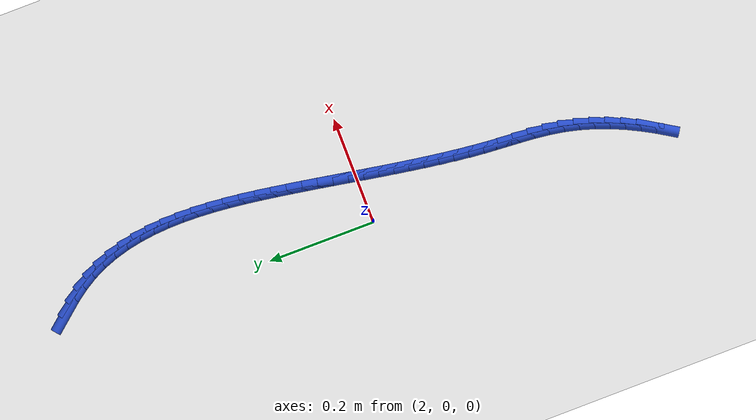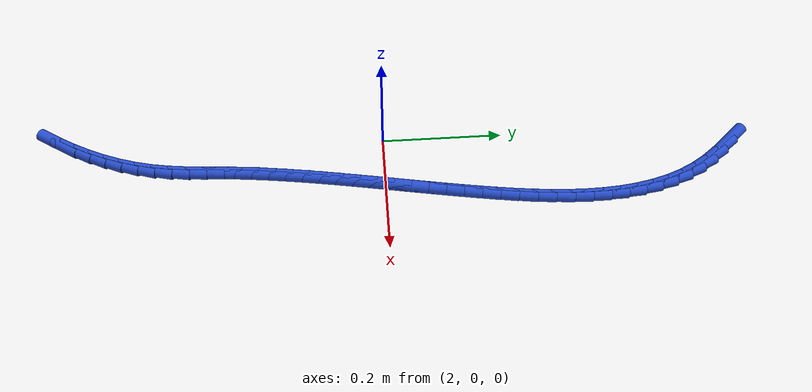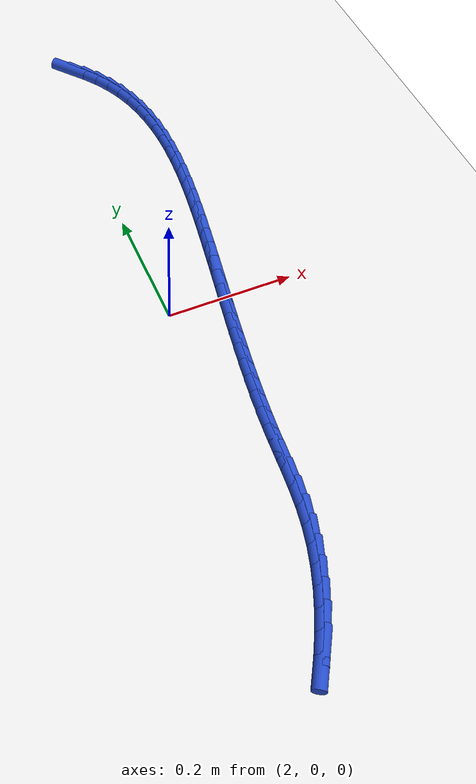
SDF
<sdf version="1.6">
 <world name="default">
  <model name="ground_plane">
   <static>1</static>
   <link name="link">
    <collision name="collision">
     <geometry><plane><normal>0 0 1</normal><size>100 100</size></plane></geometry>
     <surface><friction><ode><mu>100</mu><mu2>50</mu2></ode></friction></surface>
    </collision>
    <visual name="visual">
     <cast_shadows>0</cast_shadows>
     <geometry><plane><normal>0 0 1</normal><size>100 100</size></plane></geometry>
     <material>
      <script><uri>file://media/materials/scripts/gazebo.material</uri><name>Gazebo/WhiteGlow</name></script>
     </material>
    </visual>
   </link>
  </model>
  <model name="line">
   <link name="link_104">
    <pose>2.043616849463005 0.5763922290481197 0.01 0 1.57 -0.8726222425352713</pose>
    <collision name="collision">
     <geometry><cylinder><radius>0.01</radius><length>0.08</length></cylinder></geometry>
    </collision>
    <visual name="visual">
     <material>
      <script><name>Gazebo/Blue</name><uri>file://media/materials/scripts/gazebo.material</uri></script>
     </material>
     <geometry><cylinder><radius>0.01</radius><length>0.08</length></cylinder></geometry>
    </visual>
   </link>
   <link name="link_105">
    <pose>2.0616501837644305 0.5549027878685728 0.01 0 1.57 -0.939821271320814</pose>
    <collision name="collision">
     <geometry><cylinder><radius>0.01</radius><length>0.08</length></cylinder></geometry>
    </collision>
    <visual name="visual">
     <material>
      <script><name>Gazebo/Blue</name><uri>file://media/materials/scripts/gazebo.material</uri></script>
     </material>
     <geometry><cylinder><radius>0.01</radius><length>0.08</length></cylinder></geometry>
    </visual>
   </link>
   <link name="link_106">
    <pose>2.07796312400773 0.5325749272967468 0.01 0 1.57 -1.0294012689116272</pose>
    <collision name="collision">
     <geometry><cylinder><radius>0.01</radius><length>0.08</length></cylinder></geometry>
    </collision>
    <visual name="visual">
     <material>
      <script><name>Gazebo/Blue</name><uri>file://media/materials/scripts/gazebo.material</uri></script>
     </material>
     <geometry><cylinder><radius>0.01</radius><length>0.08</length></cylinder></geometry>
    </visual>
   </link>
   <link name="link_107">
    <pose>2.092023967388394 0.5091919246186368 0.01 0 1.57 -1.1278972008371482</pose>
    <collision name="collision">
     <geometry><cylinder><radius>0.01</radius><length>0.08</length></cylinder></geometry>
    </collision>
    <visual name="visual">
     <material>
      <script><name>Gazebo/Blue</name><uri>file://media/materials/scripts/gazebo.material</uri></script>
     </material>
     <geometry><cylinder><radius>0.01</radius><length>0.08</length></cylinder></geometry>
    </visual>
   </link>
   <link name="link_108">
    <pose>2.103642874541102 0.4846963636612391 0.01 0 1.57 -1.2199858452626118</pose>
    <collision name="collision">
     <geometry><cylinder><radius>0.01</radius><length>0.08</length></cylinder></geometry>
    </collision>
    <visual name="visual">
     <material>
      <script><name>Gazebo/Blue</name><uri>file://media/materials/scripts/gazebo.material</uri></script>
     </material>
     <geometry><cylinder><radius>0.01</radius><length>0.08</length></cylinder></geometry>
    </visual>
   </link>
   <link name="link_109">
    <pose>2.1129760890835767 0.45919210107750447 0.01 0 1.57 -1.3038880407895914</pose>
    <collision name="collision">
     <geometry><cylinder><radius>0.01</radius><length>0.08</length></cylinder></geometry>
    </collision>
    <visual name="visual">
     <material>
      <script><name>Gazebo/Blue</name><uri>file://media/materials/scripts/gazebo.material</uri></script>
     </material>
     <geometry><cylinder><radius>0.01</radius><length>0.08</length></cylinder></geometry>
    </visual>
   </link>
   <link name="link_110">
    <pose>2.1201952361058534 0.43279016120451924 0.01 0 1.57 -1.3791015390159453</pose>
    <collision name="collision">
     <geometry><cylinder><radius>0.01</radius><length>0.08</length></cylinder></geometry>
    </collision>
    <visual name="visual">
     <material>
      <script><name>Gazebo/Blue</name><uri>file://media/materials/scripts/gazebo.material</uri></script>
     </material>
     <geometry><cylinder><radius>0.01</radius><length>0.08</length></cylinder></geometry>
    </visual>
   </link>
   <link name="link_111">
    <pose>2.125471940697967 0.4056015683793698 0.01 0 1.57 -1.4456336438306607</pose>
    <collision name="collision">
     <geometry><cylinder><radius>0.01</radius><length>0.08</length></cylinder></geometry>
    </collision>
    <visual name="visual">
     <material>
      <script><name>Gazebo/Blue</name><uri>file://media/materials/scripts/gazebo.material</uri></script>
     </material>
     <geometry><cylinder><radius>0.01</radius><length>0.08</length></cylinder></geometry>
    </visual>
   </link>
   <link name="link_112">
    <pose>2.1289778279499516 0.37773734693914174 0.01 0 1.57 -1.503827547458516</pose>
    <collision name="collision">
     <geometry><cylinder><radius>0.01</radius><length>0.08</length></cylinder></geometry>
    </collision>
    <visual name="visual">
     <material>
      <script><name>Gazebo/Blue</name><uri>file://media/materials/scripts/gazebo.material</uri></script>
     </material>
     <geometry><cylinder><radius>0.01</radius><length>0.08</length></cylinder></geometry>
    </visual>
   </link>
   <link name="link_113">
    <pose>2.130884522951842 0.3493085212209216 0.01 0 1.57 -1.5542089308557832</pose>
    <collision name="collision">
     <geometry><cylinder><radius>0.01</radius><length>0.08</length></cylinder></geometry>
    </collision>
    <visual name="visual">
     <material>
      <script><name>Gazebo/Blue</name><uri>file://media/materials/scripts/gazebo.material</uri></script>
     </material>
     <geometry><cylinder><radius>0.01</radius><length>0.08</length></cylinder></geometry>
    </visual>
   </link>
   <link name="link_114">
    <pose>2.1313636507936735 0.32042611556179557 0.01 0 1.57 1.5442220790841703</pose>
    <collision name="collision">
     <geometry><cylinder><radius>0.01</radius><length>0.08</length></cylinder></geometry>
    </collision>
    <visual name="visual">
     <material>
      <script><name>Gazebo/Blue</name><uri>file://media/materials/scripts/gazebo.material</uri></script>
     </material>
     <geometry><cylinder><radius>0.01</radius><length>0.08</length></cylinder></geometry>
    </visual>
   </link>
   <link name="link_115">
    <pose>2.13058683656548 0.2912011542988496 0.01 0 1.57 1.5076978242101087</pose>
    <collision name="collision">
     <geometry><cylinder><radius>0.01</radius><length>0.08</length></cylinder></geometry>
    </collision>
    <visual name="visual">
     <material>
      <script><name>Gazebo/Blue</name><uri>file://media/materials/scripts/gazebo.material</uri></script>
     </material>
     <geometry><cylinder><radius>0.01</radius><length>0.08</length></cylinder></geometry>
    </visual>
   </link>
   <link name="link_116">
    <pose>2.1287257053572963 0.26174466176916983 0.01 0 1.57 1.477286720709618</pose>
    <collision name="collision">
     <geometry><cylinder><radius>0.01</radius><length>0.08</length></cylinder></geometry>
    </collision>
    <visual name="visual">
     <material>
      <script><name>Gazebo/Blue</name><uri>file://media/materials/scripts/gazebo.material</uri></script>
     </material>
     <geometry><cylinder><radius>0.01</radius><length>0.08</length></cylinder></geometry>
    </visual>
   </link>
   <link name="link_117">
    <pose>2.125951882259157 0.23216766230984245 0.01 0 1.57 1.4525500058715943</pose>
    <collision name="collision">
     <geometry><cylinder><radius>0.01</radius><length>0.08</length></cylinder></geometry>
    </collision>
    <visual name="visual">
     <material>
      <script><name>Gazebo/Blue</name><uri>file://media/materials/scripts/gazebo.material</uri></script>
     </material>
     <geometry><cylinder><radius>0.01</radius><length>0.08</length></cylinder></geometry>
    </visual>
   </link>
   <link name="link_118">
    <pose>2.1224369923610973 0.20258118025795374 0.01 0 1.57 1.4331496441090261</pose>
    <collision name="collision">
     <geometry><cylinder><radius>0.01</radius><length>0.08</length></cylinder></geometry>
    </collision>
    <visual name="visual">
     <material>
      <script><name>Gazebo/Blue</name><uri>file://media/materials/scripts/gazebo.material</uri></script>
     </material>
     <geometry><cylinder><radius>0.01</radius><length>0.08</length></cylinder></geometry>
    </visual>
   </link>
   <link name="link_119">
    <pose>2.1183526607531507 0.1730962399505896 0.01 0 1.57 1.418857698721417</pose>
    <collision name="collision">
     <geometry><cylinder><radius>0.01</radius><length>0.08</length></cylinder></geometry>
    </collision>
    <visual name="visual">
     <material>
      <script><name>Gazebo/Blue</name><uri>file://media/materials/scripts/gazebo.material</uri></script>
     </material>
     <geometry><cylinder><radius>0.01</radius><length>0.08</length></cylinder></geometry>
    </visual>
   </link>
   <link name="link_120">
    <pose>2.1138705125253536 0.1438238657248368 0.01 0 1.57 1.40947567926064</pose>
    <collision name="collision">
     <geometry><cylinder><radius>0.01</radius><length>0.08</length></cylinder></geometry>
    </collision>
    <visual name="visual">
     <material>
      <script><name>Gazebo/Blue</name><uri>file://media/materials/scripts/gazebo.material</uri></script>
     </material>
     <geometry><cylinder><radius>0.01</radius><length>0.08</length></cylinder></geometry>
    </visual>
   </link>
   <link name="link_121">
    <pose>2.109158884085241 0.11487106231389285 0.01 0 1.57 1.403312651405605</pose>
    <collision name="collision">
     <geometry><cylinder><radius>0.01</radius><length>0.08</length></cylinder></geometry>
    </collision>
    <visual name="visual">
     <material>
      <script><name>Gazebo/Blue</name><uri>file://media/materials/scripts/gazebo.material</uri></script>
     </material>
     <geometry><cylinder><radius>0.01</radius><length>0.08</length></cylinder></geometry>
    </visual>
   </link>
   <link name="link_122">
    <pose>2.1043229816385858 0.08626767333717392 0.01 0 1.57 1.3989070304673865</pose>
    <collision name="collision">
     <geometry><cylinder><radius>0.01</radius><length>0.08</length></cylinder></geometry>
    </collision>
    <visual name="visual">
     <material>
      <script><name>Gazebo/Blue</name><uri>file://media/materials/scripts/gazebo.material</uri></script>
     </material>
     <geometry><cylinder><radius>0.01</radius><length>0.08</length></cylinder></geometry>
    </visual>
   </link>
   <link name="link_123">
    <pose>2.0994111359770398 0.0579740262367719 0.01 0 1.57 1.3962723838016233</pose>
    <collision name="collision">
     <geometry><cylinder><radius>0.01</radius><length>0.08</length></cylinder></geometry>
    </collision>
    <visual name="visual">
     <material>
      <script><name>Gazebo/Blue</name><uri>file://media/materials/scripts/gazebo.material</uri></script>
     </material>
     <geometry><cylinder><radius>0.01</radius><length>0.08</length></cylinder></geometry>
    </visual>
   </link>
   <link name="link_124">
    <pose>2.0944696444377877 0.029947963057816863 0.01 0 1.57 1.3954668046417693</pose>
    <collision name="collision">
     <geometry><cylinder><radius>0.01</radius><length>0.08</length></cylinder></geometry>
    </collision>
    <visual name="visual">
     <material>
      <script><name>Gazebo/Blue</name><uri>file://media/materials/scripts/gazebo.material</uri></script>
     </material>
     <geometry><cylinder><radius>0.01</radius><length>0.08</length></cylinder></geometry>
    </visual>
   </link>
   <link name="link_125">
    <pose>2.0895448043580123 0.002147325845438805 0.01 0 1.57 1.3965371904728674</pose>
    <collision name="collision">
     <geometry><cylinder><radius>0.01</radius><length>0.08</length></cylinder></geometry>
    </collision>
    <visual name="visual">
     <material>
      <script><name>Gazebo/Blue</name><uri>file://media/materials/scripts/gazebo.material</uri></script>
     </material>
     <geometry><cylinder><radius>0.01</radius><length>0.08</length></cylinder></geometry>
    </visual>
   </link>
   <link name="link_126">
    <pose>2.0846829130748956 -0.02547004335523226 0.01 0 1.57 1.3995183084992504</pose>
    <collision name="collision">
     <geometry><cylinder><radius>0.01</radius><length>0.08</length></cylinder></geometry>
    </collision>
    <visual name="visual">
     <material>
      <script><name>Gazebo/Blue</name><uri>file://media/materials/scripts/gazebo.material</uri></script>
     </material>
     <geometry><cylinder><radius>0.01</radius><length>0.08</length></cylinder></geometry>
    </visual>
   </link>
   <link name="link_127">
    <pose>2.079930267925623 -0.05294630249906629 0.01 0 1.57 1.4044318387749344</pose>
    <collision name="collision">
     <geometry><cylinder><radius>0.01</radius><length>0.08</length></cylinder></geometry>
    </collision>
    <visual name="visual">
     <material>
      <script><name>Gazebo/Blue</name><uri>file://media/materials/scripts/gazebo.material</uri></script>
     </material>
     <geometry><cylinder><radius>0.01</radius><length>0.08</length></cylinder></geometry>
    </visual>
   </link>
   <link name="link_128">
    <pose>2.075333166247376 -0.08032360954093327 0.01 0 1.57 1.4112854047822239</pose>
    <collision name="collision">
     <geometry><cylinder><radius>0.01</radius><length>0.08</length></cylinder></geometry>
    </collision>
    <visual name="visual">
     <material>
      <script><name>Gazebo/Blue</name><uri>file://media/materials/scripts/gazebo.material</uri></script>
     </material>
     <geometry><cylinder><radius>0.01</radius><length>0.08</length></cylinder></geometry>
    </visual>
   </link>
   <link name="link_129">
    <pose>2.070937905377339 -0.10764412243570323 0.01 0 1.57 1.4200716161349978</pose>
    <collision name="collision">
     <geometry><cylinder><radius>0.01</radius><length>0.08</length></cylinder></geometry>
    </collision>
    <visual name="visual">
     <material>
      <script><name>Gazebo/Blue</name><uri>file://media/materials/scripts/gazebo.material</uri></script>
     </material>
     <geometry><cylinder><radius>0.01</radius><length>0.08</length></cylinder></geometry>
    </visual>
   </link>
   <link name="link_130">
    <pose>2.0667907826526952 -0.13494999913824607 0.01 0 1.57 1.4307671646453535</pose>
    <collision name="collision">
     <geometry><cylinder><radius>0.01</radius><length>0.08</length></cylinder></geometry>
    </collision>
    <visual name="visual">
     <material>
      <script><name>Gazebo/Blue</name><uri>file://media/materials/scripts/gazebo.material</uri></script>
     </material>
     <geometry><cylinder><radius>0.01</radius><length>0.08</length></cylinder></geometry>
    </visual>
   </link>
   <link name="link_131">
    <pose>2.062938095410628 -0.16228339760343186 0.01 0 1.57 1.4433320317268927</pose>
    <collision name="collision">
     <geometry><cylinder><radius>0.01</radius><length>0.08</length></cylinder></geometry>
    </collision>
    <visual name="visual">
     <material>
      <script><name>Gazebo/Blue</name><uri>file://media/materials/scripts/gazebo.material</uri></script>
     </material>
     <geometry><cylinder><radius>0.01</radius><length>0.08</length></cylinder></geometry>
    </visual>
   </link>
   <link name="link_132">
    <pose>2.0594261409883208 -0.18968647578613052 0.01 0 1.57 1.4577088800748372</pose>
    <collision name="collision">
     <geometry><cylinder><radius>0.01</radius><length>0.08</length></cylinder></geometry>
    </collision>
    <visual name="visual">
     <material>
      <script><name>Gazebo/Blue</name><uri>file://media/materials/scripts/gazebo.material</uri></script>
     </material>
     <geometry><cylinder><radius>0.01</radius><length>0.08</length></cylinder></geometry>
    </visual>
   </link>
   <link name="link_133">
    <pose>2.056301216722957 -0.2172013916412121 0.01 0 1.57 1.473822713423389</pose>
    <collision name="collision">
     <geometry><cylinder><radius>0.01</radius><length>0.08</length></cylinder></geometry>
    </collision>
    <visual name="visual">
     <material>
      <script><name>Gazebo/Blue</name><uri>file://media/materials/scripts/gazebo.material</uri></script>
     </material>
     <geometry><cylinder><radius>0.01</radius><length>0.08</length></cylinder></geometry>
    </visual>
   </link>
   <link name="link_134">
    <pose>2.0536096199517195 -0.2448703031235465 0.01 0 1.57 1.4911902575933411</pose>
    <collision name="collision">
     <geometry><cylinder><radius>0.01</radius><length>0.08</length></cylinder></geometry>
    </collision>
    <visual name="visual">
     <material>
      <script><name>Gazebo/Blue</name><uri>file://media/materials/scripts/gazebo.material</uri></script>
     </material>
     <geometry><cylinder><radius>0.01</radius><length>0.08</length></cylinder></geometry>
    </visual>
   </link>
   <link name="link_135">
    <pose>2.051386954033914 -0.2727321087677882 0.01 0 1.57 1.4994231759305046</pose>
    <collision name="collision">
     <geometry><cylinder><radius>0.01</radius><length>0.08</length></cylinder></geometry>
    </collision>
    <visual name="visual">
     <material>
      <script><name>Gazebo/Blue</name><uri>file://media/materials/scripts/gazebo.material</uri></script>
     </material>
     <geometry><cylinder><radius>0.01</radius><length>0.08</length></cylinder></geometry>
    </visual>
   </link>
   <link name="link_136">
    <pose>2.0493846069520916 -0.30073908103219865 0.01 0 1.57 1.4875254531385975</pose>
    <collision name="collision">
     <geometry><cylinder><radius>0.01</radius><length>0.08</length></cylinder></geometry>
    </collision>
    <visual name="visual">
     <material>
      <script><name>Gazebo/Blue</name><uri>file://media/materials/scripts/gazebo.material</uri></script>
     </material>
     <geometry><cylinder><radius>0.01</radius><length>0.08</length></cylinder></geometry>
    </visual>
   </link>
   <link name="link_137">
    <pose>2.0470467198706266 -0.3287498465398048 0.01 0 1.57 1.4548930363795594</pose>
    <collision name="collision">
     <geometry><cylinder><radius>0.01</radius><length>0.08</length></cylinder></geometry>
    </collision>
    <visual name="visual">
     <material>
      <script><name>Gazebo/Blue</name><uri>file://media/materials/scripts/gazebo.material</uri></script>
     </material>
     <geometry><cylinder><radius>0.01</radius><length>0.08</length></cylinder></geometry>
    </visual>
   </link>
   <link name="link_138">
    <pose>2.043802124919001 -0.3566183658690258 0.01 0 1.57 1.4013314875333398</pose>
    <collision name="collision">
     <geometry><cylinder><radius>0.01</radius><length>0.08</length></cylinder></geometry>
    </collision>
    <visual name="visual">
     <material>
      <script><name>Gazebo/Blue</name><uri>file://media/materials/scripts/gazebo.material</uri></script>
     </material>
     <geometry><cylinder><radius>0.01</radius><length>0.08</length></cylinder></geometry>
    </visual>
   </link>
   <link name="link_139">
    <pose>2.0390828823114 -0.3841991881800508 0.01 0 1.57 1.335451204277528</pose>
    <collision name="collision">
     <geometry><cylinder><radius>0.01</radius><length>0.08</length></cylinder></geometry>
    </collision>
    <visual name="visual">
     <material>
      <script><name>Gazebo/Blue</name><uri>file://media/materials/scripts/gazebo.material</uri></script>
     </material>
     <geometry><cylinder><radius>0.01</radius><length>0.08</length></cylinder></geometry>
    </visual>
   </link>
   <link name="link_140">
    <pose>2.032562616914485 -0.4113909074967638 0.01 0 1.57 1.2721512936665518</pose>
    <collision name="collision">
     <geometry><cylinder><radius>0.01</radius><length>0.08</length></cylinder></geometry>
    </collision>
    <visual name="visual">
     <material>
      <script><name>Gazebo/Blue</name><uri>file://media/materials/scripts/gazebo.material</uri></script>
     </material>
     <geometry><cylinder><radius>0.01</radius><length>0.08</length></cylinder></geometry>
    </visual>
   </link>
   <link name="link_141">
    <pose>2.0243198613204005 -0.43816594530660913 0.01 0 1.57 1.212978871516924</pose>
    <collision name="collision">
     <geometry><cylinder><radius>0.01</radius><length>0.08</length></cylinder></geometry>
    </collision>
    <visual name="visual">
     <material>
      <script><name>Gazebo/Blue</name><uri>file://media/materials/scripts/gazebo.material</uri></script>
     </material>
     <geometry><cylinder><radius>0.01</radius><length>0.08</length></cylinder></geometry>
    </visual>
   </link>
   <link name="link_142">
    <pose>2.0144718025414807 -0.46450377101836715 0.01 0 1.57 1.1579436420468836</pose>
    <collision name="collision">
     <geometry><cylinder><radius>0.01</radius><length>0.08</length></cylinder></geometry>
    </collision>
    <visual name="visual">
     <material>
      <script><name>Gazebo/Blue</name><uri>file://media/materials/scripts/gazebo.material</uri></script>
     </material>
     <geometry><cylinder><radius>0.01</radius><length>0.08</length></cylinder></geometry>
    </visual>
   </link>
   <link name="link_143">
    <pose>2.0031356275900594 -0.4903838540408187 0.01 0 1.57 1.1069534990909244</pose>
    <collision name="collision">
     <geometry><cylinder><radius>0.01</radius><length>0.08</length></cylinder></geometry>
    </collision>
    <visual name="visual">
     <material>
      <script><name>Gazebo/Blue</name><uri>file://media/materials/scripts/gazebo.material</uri></script>
     </material>
     <geometry><cylinder><radius>0.01</radius><length>0.08</length></cylinder></geometry>
    </visual>
   </link>
   <link name="link_144">
    <pose>1.990428523478469 -0.5157856637827443 0.01 0 1.57 1.0598446041852885</pose>
    <collision name="collision">
     <geometry><cylinder><radius>0.01</radius><length>0.08</length></cylinder></geometry>
    </collision>
    <visual name="visual">
     <material>
      <script><name>Gazebo/Blue</name><uri>file://media/materials/scripts/gazebo.material</uri></script>
     </material>
     <geometry><cylinder><radius>0.01</radius><length>0.08</length></cylinder></geometry>
    </visual>
   </link>
   <link name="link_145">
    <pose>1.9764676772190448 -0.5406886696529242 0.01 0 1.57 1.016407369206892</pose>
    <collision name="collision">
     <geometry><cylinder><radius>0.01</radius><length>0.08</length></cylinder></geometry>
    </collision>
    <visual name="visual">
     <material>
      <script><name>Gazebo/Blue</name><uri>file://media/materials/scripts/gazebo.material</uri></script>
     </material>
     <geometry><cylinder><radius>0.01</radius><length>0.08</length></cylinder></geometry>
    </visual>
   </link>
  </model>
 </world>
</sdf>
